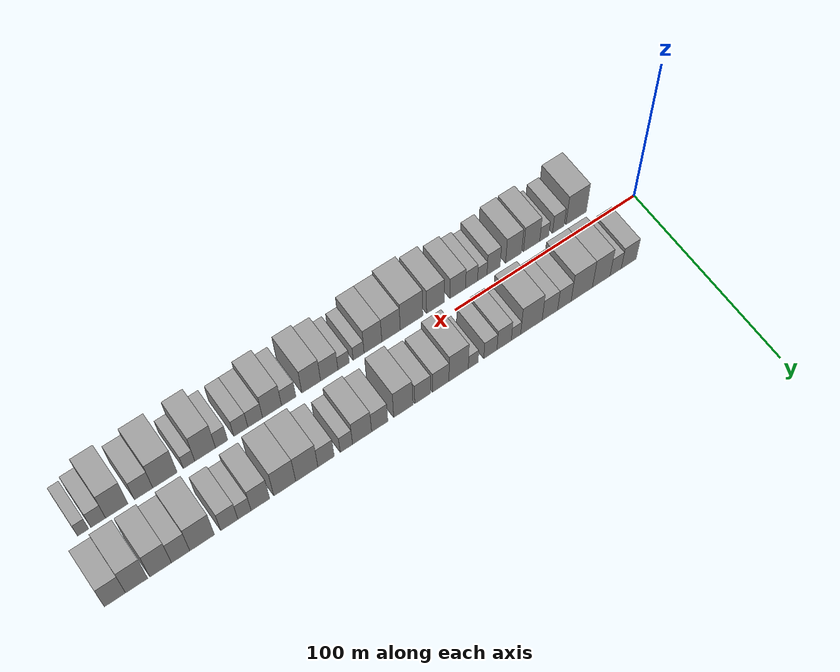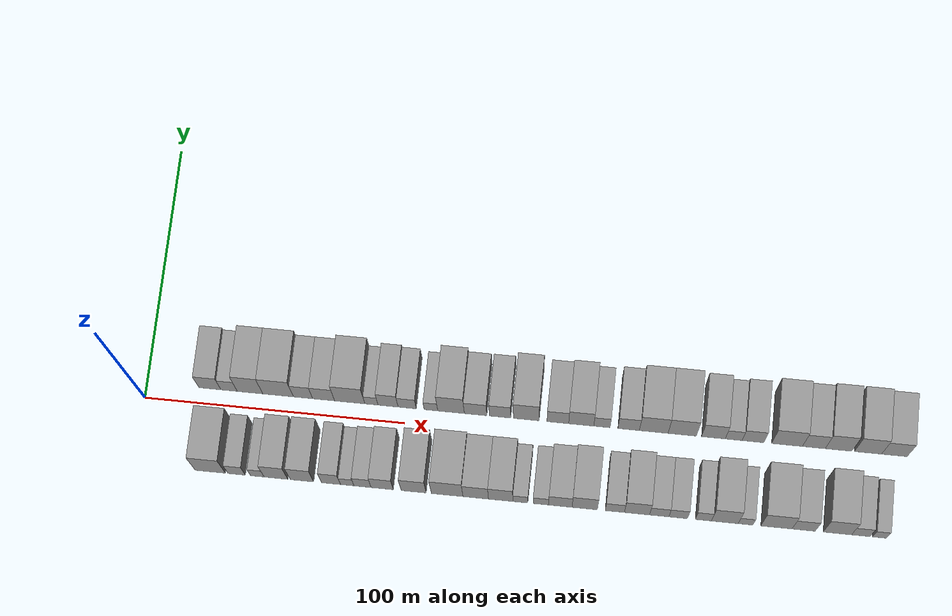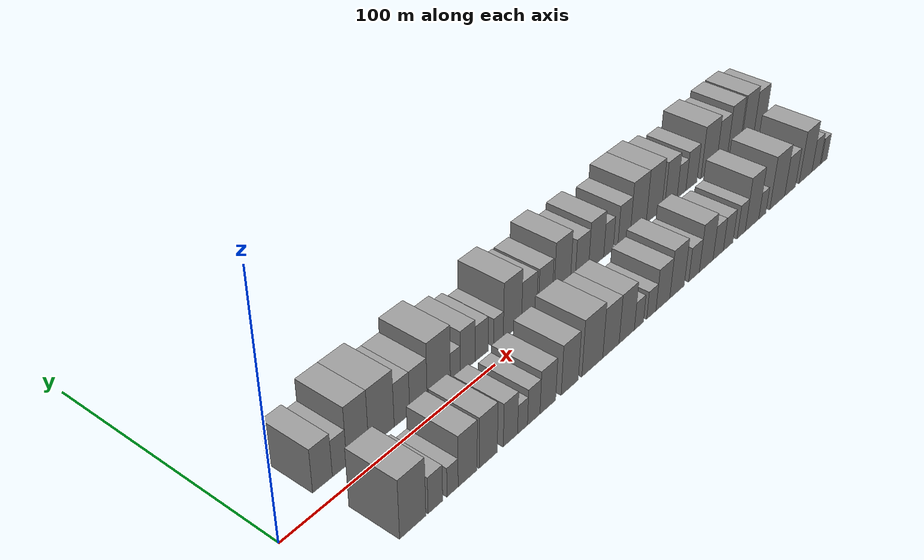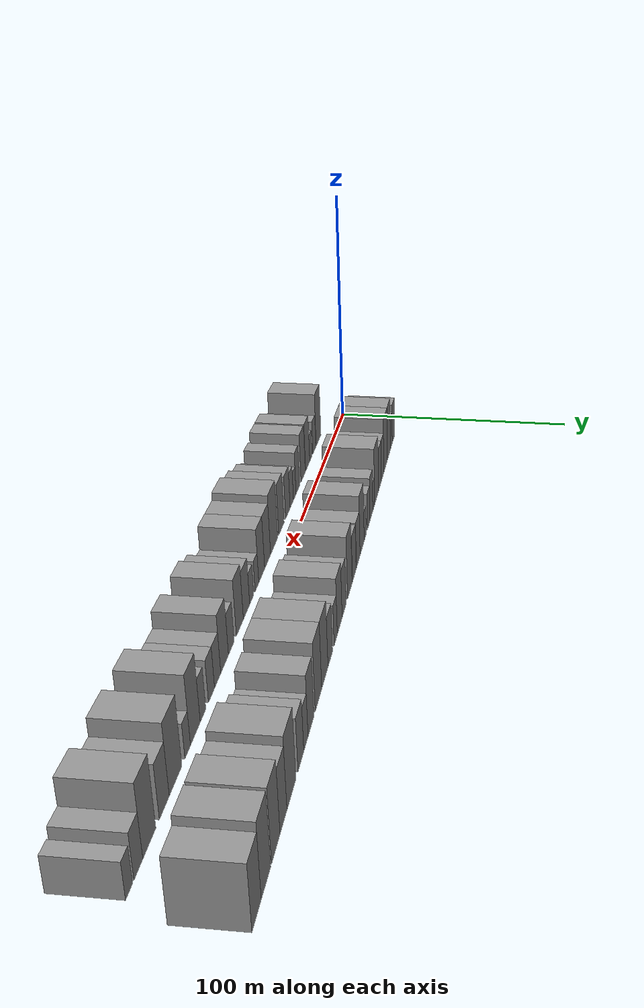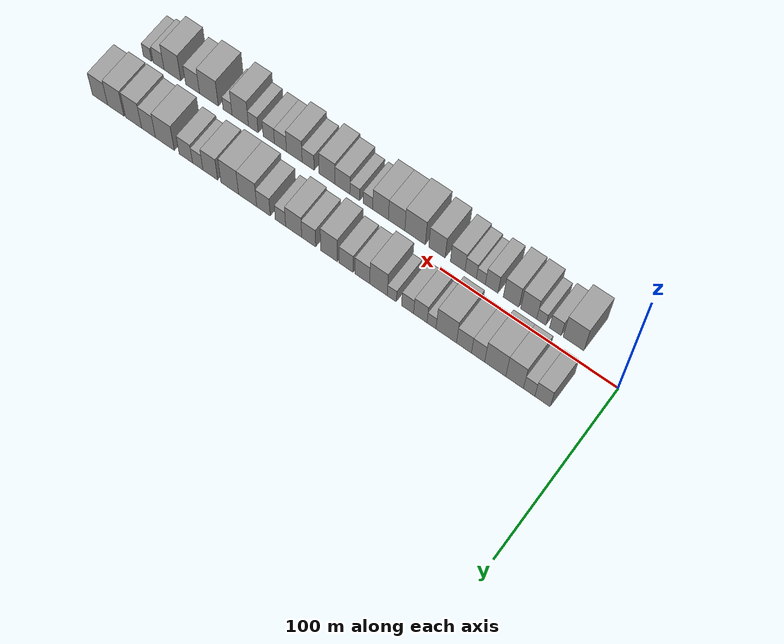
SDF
<sdf version="1.6">
 <world name="default">
  <scene>
   <sky><clouds><speed>12</speed></clouds></sky>
   <ambient>0.4 0.4 0.4 1</ambient>
   <background>0.7 0.7 0.7 1</background>
   <shadows>1</shadows>
  </scene>
  <gravity>0 0 -9.8066</gravity>
  <magnetic_field>6e-06 2.3e-05 -4.2e-05</magnetic_field>
  <physics default="0" name="default_physics" type="ode">
   <ode>
    <solver>
     <type>quick</type>
     <iters>10</iters>
     <sor>1.0</sor>
     <use_dynamic_moi_rescaling>0</use_dynamic_moi_rescaling>
    </solver>
    <constraints>
     <cfm>0</cfm>
     <erp>0.2</erp>
     <contact_max_correcting_vel>100</contact_max_correcting_vel>
     <contact_surface_layer>0.001</contact_surface_layer>
    </constraints>
   </ode>
   <max_step_size>0.004</max_step_size>
   <real_time_factor>1</real_time_factor>
   <real_time_update_rate>250</real_time_update_rate>
  </physics>
  <light name="sun" type="directional">
   <pose>0 0 10 0 0 0</pose>
   <diffuse>0.8 0.8 0.8 1</diffuse>
   <specular>0.2 0.2 0.2 1</specular>
   <attenuation>
    <range>1000</range>
    <constant>0.9</constant>
    <linear>0.01</linear>
    <quadratic>0.001</quadratic>
   </attenuation>
   <direction>-0.5 0.1 -0.9</direction>
  </light>
  <model name="building_1">
   <static>1</static>
   <pose>24.2453 16.0000 0 0.000000 0.000000 1.570796</pose>
   <link name="link">
    <pose>0 0 9.00 0 0 0</pose>
    <collision name="collision"><geometry><box><size>20.0000 8.4906 18.0000</size></box></geometry></collision>
    <visual name="visual">
     <cast_shadows>0</cast_shadows>
     <geometry><box><size>20.0000 8.4906 18.0000</size></box></geometry>
     <material>
      <script>
       <uri>model://grey_wall/materials/scripts</uri>
       <uri>model://grey_wall/materials/textures</uri>
       <name>vrc/grey_wall</name>
      </script>
     </material>
    </visual>
   </link>
  </model>
  <model name="building_2">
   <static>1</static>
   <pose>31.6481 16.0000 0 0.000000 0.000000 1.570796</pose>
   <link name="link">
    <pose>0 0 7.50 0 0 0</pose>
    <collision name="collision"><geometry><box><size>20.0000 6.3150 15.0000</size></box></geometry></collision>
    <visual name="visual">
     <cast_shadows>0</cast_shadows>
     <geometry><box><size>20.0000 6.3150 15.0000</size></box></geometry>
     <material>
      <script>
       <uri>model://grey_wall/materials/scripts</uri>
       <uri>model://grey_wall/materials/textures</uri>
       <name>vrc/grey_wall</name>
      </script>
     </material>
    </visual>
   </link>
  </model>
  <model name="building_3">
   <static>1</static>
   <pose>39.7256 16.0000 0 0.000000 0.000000 1.570796</pose>
   <link name="link">
    <pose>0 0 12.00 0 0 0</pose>
    <collision name="collision"><geometry><box><size>20.0000 9.8399 24.0000</size></box></geometry></collision>
    <visual name="visual">
     <cast_shadows>0</cast_shadows>
     <geometry><box><size>20.0000 9.8399 24.0000</size></box></geometry>
     <material>
      <script>
       <uri>model://grey_wall/materials/scripts</uri>
       <uri>model://grey_wall/materials/textures</uri>
       <name>vrc/grey_wall</name>
      </script>
     </material>
    </visual>
   </link>
  </model>
  <model name="building_4">
   <static>1</static>
   <pose>50.5519 16.0000 0 0.000000 0.000000 1.570796</pose>
   <link name="link">
    <pose>0 0 12.00 0 0 0</pose>
    <collision name="collision"><geometry><box><size>20.0000 11.8128 24.0000</size></box></geometry></collision>
    <visual name="visual">
     <cast_shadows>0</cast_shadows>
     <geometry><box><size>20.0000 11.8128 24.0000</size></box></geometry>
     <material>
      <script>
       <uri>model://grey_wall/materials/scripts</uri>
       <uri>model://grey_wall/materials/textures</uri>
       <name>vrc/grey_wall</name>
      </script>
     </material>
    </visual>
   </link>
  </model>
  <model name="building_5">
   <static>1</static>
   <pose>60.1665 16.0000 0 0.000000 0.000000 1.570796</pose>
   <link name="link">
    <pose>0 0 9.00 0 0 0</pose>
    <collision name="collision"><geometry><box><size>20.0000 7.4164 18.0000</size></box></geometry></collision>
    <visual name="visual">
     <cast_shadows>0</cast_shadows>
     <geometry><box><size>20.0000 7.4164 18.0000</size></box></geometry>
     <material>
      <script>
       <uri>model://grey_wall/materials/scripts</uri>
       <uri>model://grey_wall/materials/textures</uri>
       <name>vrc/grey_wall</name>
      </script>
     </material>
    </visual>
   </link>
  </model>
  <model name="building_6">
   <static>1</static>
   <pose>68.1065 16.0000 0 0.000000 0.000000 1.570796</pose>
   <link name="link">
    <pose>0 0 9.00 0 0 0</pose>
    <collision name="collision"><geometry><box><size>20.0000 8.4635 18.0000</size></box></geometry></collision>
    <visual name="visual">
     <cast_shadows>0</cast_shadows>
     <geometry><box><size>20.0000 8.4635 18.0000</size></box></geometry>
     <material>
      <script>
       <uri>model://grey_wall/materials/scripts</uri>
       <uri>model://grey_wall/materials/textures</uri>
       <name>vrc/grey_wall</name>
      </script>
     </material>
    </visual>
   </link>
  </model>
  <model name="building_7">
   <static>1</static>
   <pose>78.1638 16.0000 0 0.000000 0.000000 1.570796</pose>
   <link name="link">
    <pose>0 0 12.00 0 0 0</pose>
    <collision name="collision"><geometry><box><size>20.0000 11.6513 24.0000</size></box></geometry></collision>
    <visual name="visual">
     <cast_shadows>0</cast_shadows>
     <geometry><box><size>20.0000 11.6513 24.0000</size></box></geometry>
     <material>
      <script>
       <uri>model://grey_wall/materials/scripts</uri>
       <uri>model://grey_wall/materials/textures</uri>
       <name>vrc/grey_wall</name>
      </script>
     </material>
    </visual>
   </link>
  </model>
  <model name="building_8">
   <static>1</static>
   <pose>86.5142 16.0000 0 0.000000 0.000000 1.570796</pose>
   <link name="link">
    <pose>0 0 6.00 0 0 0</pose>
    <collision name="collision"><geometry><box><size>20.0000 5.0495 12.0000</size></box></geometry></collision>
    <visual name="visual">
     <cast_shadows>0</cast_shadows>
     <geometry><box><size>20.0000 5.0495 12.0000</size></box></geometry>
     <material>
      <script>
       <uri>model://grey_wall/materials/scripts</uri>
       <uri>model://grey_wall/materials/textures</uri>
       <name>vrc/grey_wall</name>
      </script>
     </material>
    </visual>
   </link>
  </model>
  <model name="building_9">
   <static>1</static>
   <pose>92.9058 16.0000 0 0.000000 0.000000 1.570796</pose>
   <link name="link">
    <pose>0 0 9.00 0 0 0</pose>
    <collision name="collision"><geometry><box><size>20.0000 7.7335 18.0000</size></box></geometry></collision>
    <visual name="visual">
     <cast_shadows>0</cast_shadows>
     <geometry><box><size>20.0000 7.7335 18.0000</size></box></geometry>
     <material>
      <script>
       <uri>model://grey_wall/materials/scripts</uri>
       <uri>model://grey_wall/materials/textures</uri>
       <name>vrc/grey_wall</name>
      </script>
     </material>
    </visual>
   </link>
  </model>
  <model name="building_10">
   <static>1</static>
   <pose>100.2702 16.0000 0 0.000000 0.000000 1.570796</pose>
   <link name="link">
    <pose>0 0 7.50 0 0 0</pose>
    <collision name="collision"><geometry><box><size>20.0000 6.9953 15.0000</size></box></geometry></collision>
    <visual name="visual">
     <cast_shadows>0</cast_shadows>
     <geometry><box><size>20.0000 6.9953 15.0000</size></box></geometry>
     <material>
      <script>
       <uri>model://grey_wall/materials/scripts</uri>
       <uri>model://grey_wall/materials/textures</uri>
       <name>vrc/grey_wall</name>
      </script>
     </material>
    </visual>
   </link>
  </model>
  <model name="building_11">
   <static>1</static>
   <pose>109.3887 16.0000 0 0.000000 0.000000 1.570796</pose>
   <link name="link">
    <pose>0 0 6.00 0 0 0</pose>
    <collision name="collision"><geometry><box><size>20.0000 5.2417 12.0000</size></box></geometry></collision>
    <visual name="visual">
     <cast_shadows>0</cast_shadows>
     <geometry><box><size>20.0000 5.2417 12.0000</size></box></geometry>
     <material>
      <script>
       <uri>model://grey_wall/materials/scripts</uri>
       <uri>model://grey_wall/materials/textures</uri>
       <name>vrc/grey_wall</name>
      </script>
     </material>
    </visual>
   </link>
  </model>
  <model name="building_12">
   <static>1</static>
   <pose>117.1136 16.0000 0 0.000000 0.000000 1.570796</pose>
   <link name="link">
    <pose>0 0 12.00 0 0 0</pose>
    <collision name="collision"><geometry><box><size>20.0000 10.2082 24.0000</size></box></geometry></collision>
    <visual name="visual">
     <cast_shadows>0</cast_shadows>
     <geometry><box><size>20.0000 10.2082 24.0000</size></box></geometry>
     <material>
      <script>
       <uri>model://grey_wall/materials/scripts</uri>
       <uri>model://grey_wall/materials/textures</uri>
       <name>vrc/grey_wall</name>
      </script>
     </material>
    </visual>
   </link>
  </model>
  <model name="building_13">
   <static>1</static>
   <pose>126.5359 16.0000 0 0.000000 0.000000 1.570796</pose>
   <link name="link">
    <pose>0 0 9.00 0 0 0</pose>
    <collision name="collision"><geometry><box><size>20.0000 8.6364 18.0000</size></box></geometry></collision>
    <visual name="visual">
     <cast_shadows>0</cast_shadows>
     <geometry><box><size>20.0000 8.6364 18.0000</size></box></geometry>
     <material>
      <script>
       <uri>model://grey_wall/materials/scripts</uri>
       <uri>model://grey_wall/materials/textures</uri>
       <name>vrc/grey_wall</name>
      </script>
     </material>
    </visual>
   </link>
  </model>
  <model name="building_14">
   <static>1</static>
   <pose>135.9536 16.0000 0 0.000000 0.000000 1.570796</pose>
   <link name="link">
    <pose>0 0 9.00 0 0 0</pose>
    <collision name="collision"><geometry><box><size>20.0000 8.1991 18.0000</size></box></geometry></collision>
    <visual name="visual">
     <cast_shadows>0</cast_shadows>
     <geometry><box><size>20.0000 8.1991 18.0000</size></box></geometry>
     <material>
      <script>
       <uri>model://grey_wall/materials/scripts</uri>
       <uri>model://grey_wall/materials/textures</uri>
       <name>vrc/grey_wall</name>
      </script>
     </material>
    </visual>
   </link>
  </model>
  <model name="building_15">
   <static>1</static>
   <pose>145.9881 16.0000 0 0.000000 0.000000 1.570796</pose>
   <link name="link">
    <pose>0 0 12.00 0 0 0</pose>
    <collision name="collision"><geometry><box><size>20.0000 9.8700 24.0000</size></box></geometry></collision>
    <visual name="visual">
     <cast_shadows>0</cast_shadows>
     <geometry><box><size>20.0000 9.8700 24.0000</size></box></geometry>
     <material>
      <script>
       <uri>model://grey_wall/materials/scripts</uri>
       <uri>model://grey_wall/materials/textures</uri>
       <name>vrc/grey_wall</name>
      </script>
     </material>
    </visual>
   </link>
  </model>
  <model name="building_16">
   <static>1</static>
   <pose>158.0715 16.0000 0 0.000000 0.000000 1.570796</pose>
   <link name="link">
    <pose>0 0 9.00 0 0 0</pose>
    <collision name="collision"><geometry><box><size>20.0000 8.2967 18.0000</size></box></geometry></collision>
    <visual name="visual">
     <cast_shadows>0</cast_shadows>
     <geometry><box><size>20.0000 8.2967 18.0000</size></box></geometry>
     <material>
      <script>
       <uri>model://grey_wall/materials/scripts</uri>
       <uri>model://grey_wall/materials/textures</uri>
       <name>vrc/grey_wall</name>
      </script>
     </material>
    </visual>
   </link>
  </model>
  <model name="building_17">
   <static>1</static>
   <pose>167.0354 16.0000 0 0.000000 0.000000 1.570796</pose>
   <link name="link">
    <pose>0 0 10.50 0 0 0</pose>
    <collision name="collision"><geometry><box><size>20.0000 9.6312 21.0000</size></box></geometry></collision>
    <visual name="visual">
     <cast_shadows>0</cast_shadows>
     <geometry><box><size>20.0000 9.6312 21.0000</size></box></geometry>
     <material>
      <script>
       <uri>model://grey_wall/materials/scripts</uri>
       <uri>model://grey_wall/materials/textures</uri>
       <name>vrc/grey_wall</name>
      </script>
     </material>
    </visual>
   </link>
  </model>
  <model name="building_18">
   <static>1</static>
   <pose>174.9630 16.0000 0 0.000000 0.000000 1.570796</pose>
   <link name="link">
    <pose>0 0 7.50 0 0 0</pose>
    <collision name="collision"><geometry><box><size>20.0000 6.2240 15.0000</size></box></geometry></collision>
    <visual name="visual">
     <cast_shadows>0</cast_shadows>
     <geometry><box><size>20.0000 6.2240 15.0000</size></box></geometry>
     <material>
      <script>
       <uri>model://grey_wall/materials/scripts</uri>
       <uri>model://grey_wall/materials/textures</uri>
       <name>vrc/grey_wall</name>
      </script>
     </material>
    </visual>
   </link>
  </model>
  <model name="building_19">
   <static>1</static>
   <pose>185.1741 16.0000 0 0.000000 0.000000 1.570796</pose>
   <link name="link">
    <pose>0 0 9.00 0 0 0</pose>
    <collision name="collision"><geometry><box><size>20.0000 8.1982 18.0000</size></box></geometry></collision>
    <visual name="visual">
     <cast_shadows>0</cast_shadows>
     <geometry><box><size>20.0000 8.1982 18.0000</size></box></geometry>
     <material>
      <script>
       <uri>model://grey_wall/materials/scripts</uri>
       <uri>model://grey_wall/materials/textures</uri>
       <name>vrc/grey_wall</name>
      </script>
     </material>
    </visual>
   </link>
  </model>
  <model name="building_20">
   <static>1</static>
   <pose>194.7635 16.0000 0 0.000000 0.000000 1.570796</pose>
   <link name="link">
    <pose>0 0 12.00 0 0 0</pose>
    <collision name="collision"><geometry><box><size>20.0000 10.9805 24.0000</size></box></geometry></collision>
    <visual name="visual">
     <cast_shadows>0</cast_shadows>
     <geometry><box><size>20.0000 10.9805 24.0000</size></box></geometry>
     <material>
      <script>
       <uri>model://grey_wall/materials/scripts</uri>
       <uri>model://grey_wall/materials/textures</uri>
       <name>vrc/grey_wall</name>
      </script>
     </material>
    </visual>
   </link>
  </model>
  <model name="building_21">
   <static>1</static>
   <pose>205.6644 16.0000 0 0.000000 0.000000 1.570796</pose>
   <link name="link">
    <pose>0 0 12.00 0 0 0</pose>
    <collision name="collision"><geometry><box><size>20.0000 10.8213 24.0000</size></box></geometry></collision>
    <visual name="visual">
     <cast_shadows>0</cast_shadows>
     <geometry><box><size>20.0000 10.8213 24.0000</size></box></geometry>
     <material>
      <script>
       <uri>model://grey_wall/materials/scripts</uri>
       <uri>model://grey_wall/materials/textures</uri>
       <name>vrc/grey_wall</name>
      </script>
     </material>
    </visual>
   </link>
  </model>
  <model name="building_22">
   <static>1</static>
   <pose>217.6033 16.0000 0 0.000000 0.000000 1.570796</pose>
   <link name="link">
    <pose>0 0 10.50 0 0 0</pose>
    <collision name="collision"><geometry><box><size>20.0000 9.0565 21.0000</size></box></geometry></collision>
    <visual name="visual">
     <cast_shadows>0</cast_shadows>
     <geometry><box><size>20.0000 9.0565 21.0000</size></box></geometry>
     <material>
      <script>
       <uri>model://grey_wall/materials/scripts</uri>
       <uri>model://grey_wall/materials/textures</uri>
       <name>vrc/grey_wall</name>
      </script>
     </material>
    </visual>
   </link>
  </model>
  <model name="building_23">
   <static>1</static>
   <pose>225.3275 16.0000 0 0.000000 0.000000 1.570796</pose>
   <link name="link">
    <pose>0 0 7.50 0 0 0</pose>
    <collision name="collision"><geometry><box><size>20.0000 6.3919 15.0000</size></box></geometry></collision>
    <visual name="visual">
     <cast_shadows>0</cast_shadows>
     <geometry><box><size>20.0000 6.3919 15.0000</size></box></geometry>
     <material>
      <script>
       <uri>model://grey_wall/materials/scripts</uri>
       <uri>model://grey_wall/materials/textures</uri>
       <name>vrc/grey_wall</name>
      </script>
     </material>
    </visual>
   </link>
  </model>
  <model name="building_24">
   <static>1</static>
   <pose>232.6744 16.0000 0 0.000000 0.000000 1.570796</pose>
   <link name="link">
    <pose>0 0 9.00 0 0 0</pose>
    <collision name="collision"><geometry><box><size>20.0000 8.3020 18.0000</size></box></geometry></collision>
    <visual name="visual">
     <cast_shadows>0</cast_shadows>
     <geometry><box><size>20.0000 8.3020 18.0000</size></box></geometry>
     <material>
      <script>
       <uri>model://grey_wall/materials/scripts</uri>
       <uri>model://grey_wall/materials/textures</uri>
       <name>vrc/grey_wall</name>
      </script>
     </material>
    </visual>
   </link>
  </model>
  <model name="building_25">
   <static>1</static>
   <pose>245.7042 16.0000 0 0.000000 0.000000 1.570796</pose>
   <link name="link">
    <pose>0 0 12.00 0 0 0</pose>
    <collision name="collision"><geometry><box><size>20.0000 11.7576 24.0000</size></box></geometry></collision>
    <visual name="visual">
     <cast_shadows>0</cast_shadows>
     <geometry><box><size>20.0000 11.7576 24.0000</size></box></geometry>
     <material>
      <script>
       <uri>model://grey_wall/materials/scripts</uri>
       <uri>model://grey_wall/materials/textures</uri>
       <name>vrc/grey_wall</name>
      </script>
     </material>
    </visual>
   </link>
  </model>
  <model name="building_26">
   <static>1</static>
   <pose>255.9266 16.0000 0 0.000000 0.000000 1.570796</pose>
   <link name="link">
    <pose>0 0 10.50 0 0 0</pose>
    <collision name="collision"><geometry><box><size>20.0000 8.6872 21.0000</size></box></geometry></collision>
    <visual name="visual">
     <cast_shadows>0</cast_shadows>
     <geometry><box><size>20.0000 8.6872 21.0000</size></box></geometry>
     <material>
      <script>
       <uri>model://grey_wall/materials/scripts</uri>
       <uri>model://grey_wall/materials/textures</uri>
       <name>vrc/grey_wall</name>
      </script>
     </material>
    </visual>
   </link>
  </model>
  <model name="building_27">
   <static>1</static>
   <pose>265.3321 16.0000 0 0.000000 0.000000 1.570796</pose>
   <link name="link">
    <pose>0 0 12.00 0 0 0</pose>
    <collision name="collision"><geometry><box><size>20.0000 10.1237 24.0000</size></box></geometry></collision>
    <visual name="visual">
     <cast_shadows>0</cast_shadows>
     <geometry><box><size>20.0000 10.1237 24.0000</size></box></geometry>
     <material>
      <script>
       <uri>model://grey_wall/materials/scripts</uri>
       <uri>model://grey_wall/materials/textures</uri>
       <name>vrc/grey_wall</name>
      </script>
     </material>
    </visual>
   </link>
  </model>
  <model name="building_28">
   <static>1</static>
   <pose>276.5536 16.0000 0 0.000000 0.000000 1.570796</pose>
   <link name="link">
    <pose>0 0 12.00 0 0 0</pose>
    <collision name="collision"><geometry><box><size>20.0000 10.3193 24.0000</size></box></geometry></collision>
    <visual name="visual">
     <cast_shadows>0</cast_shadows>
     <geometry><box><size>20.0000 10.3193 24.0000</size></box></geometry>
     <material>
      <script>
       <uri>model://grey_wall/materials/scripts</uri>
       <uri>model://grey_wall/materials/textures</uri>
       <name>vrc/grey_wall</name>
      </script>
     </material>
    </visual>
   </link>
  </model>
  <model name="building_29">
   <static>1</static>
   <pose>286.5973 16.0000 0 0.000000 0.000000 1.570796</pose>
   <link name="link">
    <pose>0 0 10.50 0 0 0</pose>
    <collision name="collision"><geometry><box><size>20.0000 9.7681 21.0000</size></box></geometry></collision>
    <visual name="visual">
     <cast_shadows>0</cast_shadows>
     <geometry><box><size>20.0000 9.7681 21.0000</size></box></geometry>
     <material>
      <script>
       <uri>model://grey_wall/materials/scripts</uri>
       <uri>model://grey_wall/materials/textures</uri>
       <name>vrc/grey_wall</name>
      </script>
     </material>
    </visual>
   </link>
  </model>
  <model name="building_30">
   <static>1</static>
   <pose>28.7795 -16.0000 0 0.000000 0.000000 1.570796</pose>
   <link name="link">
    <pose>0 0 12.00 0 0 0</pose>
    <collision name="collision"><geometry><box><size>20.0000 11.5591 24.0000</size></box></geometry></collision>
    <visual name="visual">
     <cast_shadows>0</cast_shadows>
     <geometry><box><size>20.0000 11.5591 24.0000</size></box></geometry>
     <material>
      <script>
       <uri>model://grey_wall/materials/scripts</uri>
       <uri>model://grey_wall/materials/textures</uri>
       <name>vrc/grey_wall</name>
      </script>
     </material>
    </visual>
   </link>
  </model>
  <model name="building_31">
   <static>1</static>
   <pose>38.8640 -16.0000 0 0.000000 0.000000 1.570796</pose>
   <link name="link">
    <pose>0 0 7.50 0 0 0</pose>
    <collision name="collision"><geometry><box><size>20.0000 6.6099 15.0000</size></box></geometry></collision>
    <visual name="visual">
     <cast_shadows>0</cast_shadows>
     <geometry><box><size>20.0000 6.6099 15.0000</size></box></geometry>
     <material>
      <script>
       <uri>model://grey_wall/materials/scripts</uri>
       <uri>model://grey_wall/materials/textures</uri>
       <name>vrc/grey_wall</name>
      </script>
     </material>
    </visual>
   </link>
  </model>
  <model name="building_32">
   <static>1</static>
   <pose>46.7648 -16.0000 0 0.000000 0.000000 1.570796</pose>
   <link name="link">
    <pose>0 0 6.00 0 0 0</pose>
    <collision name="collision"><geometry><box><size>20.0000 5.1916 12.0000</size></box></geometry></collision>
    <visual name="visual">
     <cast_shadows>0</cast_shadows>
     <geometry><box><size>20.0000 5.1916 12.0000</size></box></geometry>
     <material>
      <script>
       <uri>model://grey_wall/materials/scripts</uri>
       <uri>model://grey_wall/materials/textures</uri>
       <name>vrc/grey_wall</name>
      </script>
     </material>
    </visual>
   </link>
  </model>
  <model name="building_33">
   <static>1</static>
   <pose>53.8659 -16.0000 0 0.000000 0.000000 1.570796</pose>
   <link name="link">
    <pose>0 0 10.50 0 0 0</pose>
    <collision name="collision"><geometry><box><size>20.0000 9.0106 21.0000</size></box></geometry></collision>
    <visual name="visual">
     <cast_shadows>0</cast_shadows>
     <geometry><box><size>20.0000 9.0106 21.0000</size></box></geometry>
     <material>
      <script>
       <uri>model://grey_wall/materials/scripts</uri>
       <uri>model://grey_wall/materials/textures</uri>
       <name>vrc/grey_wall</name>
      </script>
     </material>
    </visual>
   </link>
  </model>
  <model name="building_34">
   <static>1</static>
   <pose>63.8116 -16.0000 0 0.000000 0.000000 1.570796</pose>
   <link name="link">
    <pose>0 0 10.50 0 0 0</pose>
    <collision name="collision"><geometry><box><size>20.0000 8.8807 21.0000</size></box></geometry></collision>
    <visual name="visual">
     <cast_shadows>0</cast_shadows>
     <geometry><box><size>20.0000 8.8807 21.0000</size></box></geometry>
     <material>
      <script>
       <uri>model://grey_wall/materials/scripts</uri>
       <uri>model://grey_wall/materials/textures</uri>
       <name>vrc/grey_wall</name>
      </script>
     </material>
    </visual>
   </link>
  </model>
  <model name="building_35">
   <static>1</static>
   <pose>74.8698 -16.0000 0 0.000000 0.000000 1.570796</pose>
   <link name="link">
    <pose>0 0 9.00 0 0 0</pose>
    <collision name="collision"><geometry><box><size>20.0000 7.2357 18.0000</size></box></geometry></collision>
    <visual name="visual">
     <cast_shadows>0</cast_shadows>
     <geometry><box><size>20.0000 7.2357 18.0000</size></box></geometry>
     <material>
      <script>
       <uri>model://grey_wall/materials/scripts</uri>
       <uri>model://grey_wall/materials/textures</uri>
       <name>vrc/grey_wall</name>
      </script>
     </material>
    </visual>
   </link>
  </model>
  <model name="building_36">
   <static>1</static>
   <pose>81.0609 -16.0000 0 0.000000 0.000000 1.570796</pose>
   <link name="link">
    <pose>0 0 6.00 0 0 0</pose>
    <collision name="collision"><geometry><box><size>20.0000 5.1465 12.0000</size></box></geometry></collision>
    <visual name="visual">
     <cast_shadows>0</cast_shadows>
     <geometry><box><size>20.0000 5.1465 12.0000</size></box></geometry>
     <material>
      <script>
       <uri>model://grey_wall/materials/scripts</uri>
       <uri>model://grey_wall/materials/textures</uri>
       <name>vrc/grey_wall</name>
      </script>
     </material>
    </visual>
   </link>
  </model>
  <model name="building_37">
   <static>1</static>
   <pose>86.8929 -16.0000 0 0.000000 0.000000 1.570796</pose>
   <link name="link">
    <pose>0 0 7.50 0 0 0</pose>
    <collision name="collision"><geometry><box><size>20.0000 6.5175 15.0000</size></box></geometry></collision>
    <visual name="visual">
     <cast_shadows>0</cast_shadows>
     <geometry><box><size>20.0000 6.5175 15.0000</size></box></geometry>
     <material>
      <script>
       <uri>model://grey_wall/materials/scripts</uri>
       <uri>model://grey_wall/materials/textures</uri>
       <name>vrc/grey_wall</name>
      </script>
     </material>
    </visual>
   </link>
  </model>
  <model name="building_38">
   <static>1</static>
   <pose>94.3771 -16.0000 0 0.000000 0.000000 1.570796</pose>
   <link name="link">
    <pose>0 0 9.00 0 0 0</pose>
    <collision name="collision"><geometry><box><size>20.0000 8.4509 18.0000</size></box></geometry></collision>
    <visual name="visual">
     <cast_shadows>0</cast_shadows>
     <geometry><box><size>20.0000 8.4509 18.0000</size></box></geometry>
     <material>
      <script>
       <uri>model://grey_wall/materials/scripts</uri>
       <uri>model://grey_wall/materials/textures</uri>
       <name>vrc/grey_wall</name>
      </script>
     </material>
    </visual>
   </link>
  </model>
  <model name="building_39">
   <static>1</static>
   <pose>106.3641 -16.0000 0 0.000000 0.000000 1.570796</pose>
   <link name="link">
    <pose>0 0 10.50 0 0 0</pose>
    <collision name="collision"><geometry><box><size>20.0000 9.5231 21.0000</size></box></geometry></collision>
    <visual name="visual">
     <cast_shadows>0</cast_shadows>
     <geometry><box><size>20.0000 9.5231 21.0000</size></box></geometry>
     <material>
      <script>
       <uri>model://grey_wall/materials/scripts</uri>
       <uri>model://grey_wall/materials/textures</uri>
       <name>vrc/grey_wall</name>
      </script>
     </material>
    </visual>
   </link>
  </model>
  <model name="building_40">
   <static>1</static>
   <pose>119.1234 -16.0000 0 0.000000 0.000000 1.570796</pose>
   <link name="link">
    <pose>0 0 12.00 0 0 0</pose>
    <collision name="collision"><geometry><box><size>20.0000 11.9955 24.0000</size></box></geometry></collision>
    <visual name="visual">
     <cast_shadows>0</cast_shadows>
     <geometry><box><size>20.0000 11.9955 24.0000</size></box></geometry>
     <material>
      <script>
       <uri>model://grey_wall/materials/scripts</uri>
       <uri>model://grey_wall/materials/textures</uri>
       <name>vrc/grey_wall</name>
      </script>
     </material>
    </visual>
   </link>
  </model>
  <model name="building_41">
   <static>1</static>
   <pose>129.9612 -16.0000 0 0.000000 0.000000 1.570796</pose>
   <link name="link">
    <pose>0 0 10.50 0 0 0</pose>
    <collision name="collision"><geometry><box><size>20.0000 9.6802 21.0000</size></box></geometry></collision>
    <visual name="visual">
     <cast_shadows>0</cast_shadows>
     <geometry><box><size>20.0000 9.6802 21.0000</size></box></geometry>
     <material>
      <script>
       <uri>model://grey_wall/materials/scripts</uri>
       <uri>model://grey_wall/materials/textures</uri>
       <name>vrc/grey_wall</name>
      </script>
     </material>
    </visual>
   </link>
  </model>
  <model name="building_42">
   <static>1</static>
   <pose>139.4436 -16.0000 0 0.000000 0.000000 1.570796</pose>
   <link name="link">
    <pose>0 0 10.50 0 0 0</pose>
    <collision name="collision"><geometry><box><size>20.0000 9.2847 21.0000</size></box></geometry></collision>
    <visual name="visual">
     <cast_shadows>0</cast_shadows>
     <geometry><box><size>20.0000 9.2847 21.0000</size></box></geometry>
     <material>
      <script>
       <uri>model://grey_wall/materials/scripts</uri>
       <uri>model://grey_wall/materials/textures</uri>
       <name>vrc/grey_wall</name>
      </script>
     </material>
    </visual>
   </link>
  </model>
  <model name="building_43">
   <static>1</static>
   <pose>146.9252 -16.0000 0 0.000000 0.000000 1.570796</pose>
   <link name="link">
    <pose>0 0 6.00 0 0 0</pose>
    <collision name="collision"><geometry><box><size>20.0000 5.6785 12.0000</size></box></geometry></collision>
    <visual name="visual">
     <cast_shadows>0</cast_shadows>
     <geometry><box><size>20.0000 5.6785 12.0000</size></box></geometry>
     <material>
      <script>
       <uri>model://grey_wall/materials/scripts</uri>
       <uri>model://grey_wall/materials/textures</uri>
       <name>vrc/grey_wall</name>
      </script>
     </material>
    </visual>
   </link>
  </model>
  <model name="building_44">
   <static>1</static>
   <pose>154.7001 -16.0000 0 0.000000 0.000000 1.570796</pose>
   <link name="link">
    <pose>0 0 6.00 0 0 0</pose>
    <collision name="collision"><geometry><box><size>20.0000 5.8713 12.0000</size></box></geometry></collision>
    <visual name="visual">
     <cast_shadows>0</cast_shadows>
     <geometry><box><size>20.0000 5.8713 12.0000</size></box></geometry>
     <material>
      <script>
       <uri>model://grey_wall/materials/scripts</uri>
       <uri>model://grey_wall/materials/textures</uri>
       <name>vrc/grey_wall</name>
      </script>
     </material>
    </visual>
   </link>
  </model>
  <model name="building_45">
   <static>1</static>
   <pose>162.0956 -16.0000 0 0.000000 0.000000 1.570796</pose>
   <link name="link">
    <pose>0 0 9.00 0 0 0</pose>
    <collision name="collision"><geometry><box><size>20.0000 8.9196 18.0000</size></box></geometry></collision>
    <visual name="visual">
     <cast_shadows>0</cast_shadows>
     <geometry><box><size>20.0000 8.9196 18.0000</size></box></geometry>
     <material>
      <script>
       <uri>model://grey_wall/materials/scripts</uri>
       <uri>model://grey_wall/materials/textures</uri>
       <name>vrc/grey_wall</name>
      </script>
     </material>
    </visual>
   </link>
  </model>
  <model name="building_46">
   <static>1</static>
   <pose>171.3405 -16.0000 0 0.000000 0.000000 1.570796</pose>
   <link name="link">
    <pose>0 0 10.50 0 0 0</pose>
    <collision name="collision"><geometry><box><size>20.0000 9.5703 21.0000</size></box></geometry></collision>
    <visual name="visual">
     <cast_shadows>0</cast_shadows>
     <geometry><box><size>20.0000 9.5703 21.0000</size></box></geometry>
     <material>
      <script>
       <uri>model://grey_wall/materials/scripts</uri>
       <uri>model://grey_wall/materials/textures</uri>
       <name>vrc/grey_wall</name>
      </script>
     </material>
    </visual>
   </link>
  </model>
  <model name="building_47">
   <static>1</static>
   <pose>182.7523 -16.0000 0 0.000000 0.000000 1.570796</pose>
   <link name="link">
    <pose>0 0 7.50 0 0 0</pose>
    <collision name="collision"><geometry><box><size>20.0000 7.2532 15.0000</size></box></geometry></collision>
    <visual name="visual">
     <cast_shadows>0</cast_shadows>
     <geometry><box><size>20.0000 7.2532 15.0000</size></box></geometry>
     <material>
      <script>
       <uri>model://grey_wall/materials/scripts</uri>
       <uri>model://grey_wall/materials/textures</uri>
       <name>vrc/grey_wall</name>
      </script>
     </material>
    </visual>
   </link>
  </model>
  <model name="building_48">
   <static>1</static>
   <pose>191.1399 -16.0000 0 0.000000 0.000000 1.570796</pose>
   <link name="link">
    <pose>0 0 10.50 0 0 0</pose>
    <collision name="collision"><geometry><box><size>20.0000 9.5220 21.0000</size></box></geometry></collision>
    <visual name="visual">
     <cast_shadows>0</cast_shadows>
     <geometry><box><size>20.0000 9.5220 21.0000</size></box></geometry>
     <material>
      <script>
       <uri>model://grey_wall/materials/scripts</uri>
       <uri>model://grey_wall/materials/textures</uri>
       <name>vrc/grey_wall</name>
      </script>
     </material>
    </visual>
   </link>
  </model>
  <model name="building_49">
   <static>1</static>
   <pose>199.5719 -16.0000 0 0.000000 0.000000 1.570796</pose>
   <link name="link">
    <pose>0 0 7.50 0 0 0</pose>
    <collision name="collision"><geometry><box><size>20.0000 7.3420 15.0000</size></box></geometry></collision>
    <visual name="visual">
     <cast_shadows>0</cast_shadows>
     <geometry><box><size>20.0000 7.3420 15.0000</size></box></geometry>
     <material>
      <script>
       <uri>model://grey_wall/materials/scripts</uri>
       <uri>model://grey_wall/materials/textures</uri>
       <name>vrc/grey_wall</name>
      </script>
     </material>
    </visual>
   </link>
  </model>
  <model name="building_50">
   <static>1</static>
   <pose>206.7402 -16.0000 0 0.000000 0.000000 1.570796</pose>
   <link name="link">
    <pose>0 0 7.50 0 0 0</pose>
    <collision name="collision"><geometry><box><size>20.0000 6.9946 15.0000</size></box></geometry></collision>
    <visual name="visual">
     <cast_shadows>0</cast_shadows>
     <geometry><box><size>20.0000 6.9946 15.0000</size></box></geometry>
     <material>
      <script>
       <uri>model://grey_wall/materials/scripts</uri>
       <uri>model://grey_wall/materials/textures</uri>
       <name>vrc/grey_wall</name>
      </script>
     </material>
    </visual>
   </link>
  </model>
  <model name="building_51">
   <static>1</static>
   <pose>216.2477 -16.0000 0 0.000000 0.000000 1.570796</pose>
   <link name="link">
    <pose>0 0 7.50 0 0 0</pose>
    <collision name="collision"><geometry><box><size>20.0000 6.0204 15.0000</size></box></geometry></collision>
    <visual name="visual">
     <cast_shadows>0</cast_shadows>
     <geometry><box><size>20.0000 6.0204 15.0000</size></box></geometry>
     <material>
      <script>
       <uri>model://grey_wall/materials/scripts</uri>
       <uri>model://grey_wall/materials/textures</uri>
       <name>vrc/grey_wall</name>
      </script>
     </material>
    </visual>
   </link>
  </model>
  <model name="building_52">
   <static>1</static>
   <pose>224.3405 -16.0000 0 0.000000 0.000000 1.570796</pose>
   <link name="link">
    <pose>0 0 12.00 0 0 0</pose>
    <collision name="collision"><geometry><box><size>20.0000 10.1652 24.0000</size></box></geometry></collision>
    <visual name="visual">
     <cast_shadows>0</cast_shadows>
     <geometry><box><size>20.0000 10.1652 24.0000</size></box></geometry>
     <material>
      <script>
       <uri>model://grey_wall/materials/scripts</uri>
       <uri>model://grey_wall/materials/textures</uri>
       <name>vrc/grey_wall</name>
      </script>
     </material>
    </visual>
   </link>
  </model>
  <model name="building_53">
   <static>1</static>
   <pose>232.2107 -16.0000 0 0.000000 0.000000 1.570796</pose>
   <link name="link">
    <pose>0 0 6.00 0 0 0</pose>
    <collision name="collision"><geometry><box><size>20.0000 5.5753 12.0000</size></box></geometry></collision>
    <visual name="visual">
     <cast_shadows>0</cast_shadows>
     <geometry><box><size>20.0000 5.5753 12.0000</size></box></geometry>
     <material>
      <script>
       <uri>model://grey_wall/materials/scripts</uri>
       <uri>model://grey_wall/materials/textures</uri>
       <name>vrc/grey_wall</name>
      </script>
     </material>
    </visual>
   </link>
  </model>
  <model name="building_54">
   <static>1</static>
   <pose>243.8858 -16.0000 0 0.000000 0.000000 1.570796</pose>
   <link name="link">
    <pose>0 0 12.00 0 0 0</pose>
    <collision name="collision"><geometry><box><size>20.0000 11.7748 24.0000</size></box></geometry></collision>
    <visual name="visual">
     <cast_shadows>0</cast_shadows>
     <geometry><box><size>20.0000 11.7748 24.0000</size></box></geometry>
     <material>
      <script>
       <uri>model://grey_wall/materials/scripts</uri>
       <uri>model://grey_wall/materials/textures</uri>
       <name>vrc/grey_wall</name>
      </script>
     </material>
    </visual>
   </link>
  </model>
  <model name="building_55">
   <static>1</static>
   <pose>254.1599 -16.0000 0 0.000000 0.000000 1.570796</pose>
   <link name="link">
    <pose>0 0 9.00 0 0 0</pose>
    <collision name="collision"><geometry><box><size>20.0000 8.7735 18.0000</size></box></geometry></collision>
    <visual name="visual">
     <cast_shadows>0</cast_shadows>
     <geometry><box><size>20.0000 8.7735 18.0000</size></box></geometry>
     <material>
      <script>
       <uri>model://grey_wall/materials/scripts</uri>
       <uri>model://grey_wall/materials/textures</uri>
       <name>vrc/grey_wall</name>
      </script>
     </material>
    </visual>
   </link>
  </model>
  <model name="building_56">
   <static>1</static>
   <pose>266.8691 -16.0000 0 0.000000 0.000000 1.570796</pose>
   <link name="link">
    <pose>0 0 12.00 0 0 0</pose>
    <collision name="collision"><geometry><box><size>20.0000 10.6447 24.0000</size></box></geometry></collision>
    <visual name="visual">
     <cast_shadows>0</cast_shadows>
     <geometry><box><size>20.0000 10.6447 24.0000</size></box></geometry>
     <material>
      <script>
       <uri>model://grey_wall/materials/scripts</uri>
       <uri>model://grey_wall/materials/textures</uri>
       <name>vrc/grey_wall</name>
      </script>
     </material>
    </visual>
   </link>
  </model>
  <model name="building_57">
   <static>1</static>
   <pose>275.6642 -16.0000 0 0.000000 0.000000 1.570796</pose>
   <link name="link">
    <pose>0 0 7.50 0 0 0</pose>
    <collision name="collision"><geometry><box><size>20.0000 6.9455 15.0000</size></box></geometry></collision>
    <visual name="visual">
     <cast_shadows>0</cast_shadows>
     <geometry><box><size>20.0000 6.9455 15.0000</size></box></geometry>
     <material>
      <script>
       <uri>model://grey_wall/materials/scripts</uri>
       <uri>model://grey_wall/materials/textures</uri>
       <name>vrc/grey_wall</name>
      </script>
     </material>
    </visual>
   </link>
  </model>
  <model name="building_58">
   <static>1</static>
   <pose>282.7604 -16.0000 0 0.000000 0.000000 1.570796</pose>
   <link name="link">
    <pose>0 0 6.00 0 0 0</pose>
    <collision name="collision"><geometry><box><size>20.0000 5.2469 12.0000</size></box></geometry></collision>
    <visual name="visual">
     <cast_shadows>0</cast_shadows>
     <geometry><box><size>20.0000 5.2469 12.0000</size></box></geometry>
     <material>
      <script>
       <uri>model://grey_wall/materials/scripts</uri>
       <uri>model://grey_wall/materials/textures</uri>
       <name>vrc/grey_wall</name>
      </script>
     </material>
    </visual>
   </link>
  </model>
 </world>
</sdf>
